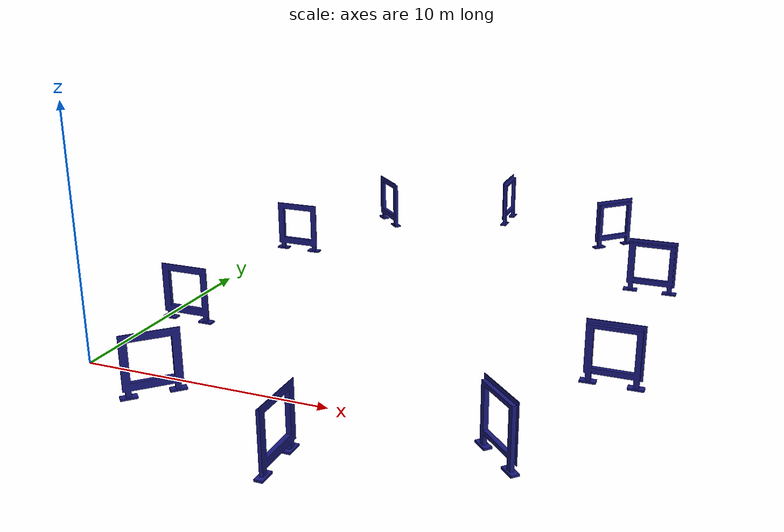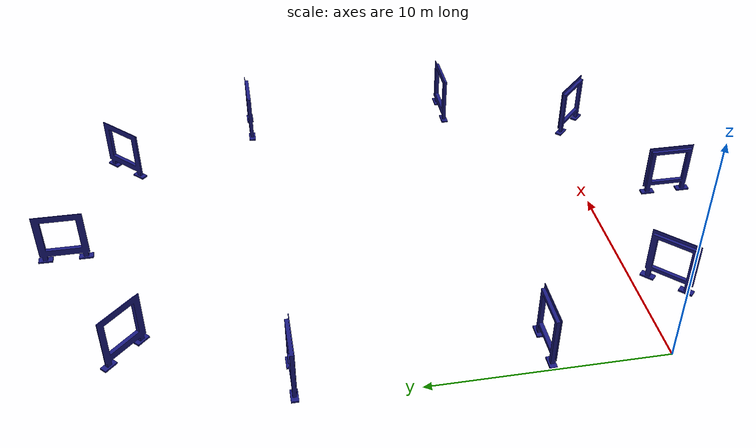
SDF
<sdf version="1.4">
 <world name="default">
  <include><uri>model://sun</uri></include>
  <include><uri>model://AlphaPilotGate</uri><pose>0 5 2.5 0 3.1415 3.1415</pose><name>Gate1</name></include>
  <include><uri>model://AlphaPilotGate</uri><pose>0 15 2.5 0 3.1415 3.1415</pose><name>Gate2</name></include>
  <include>
   <uri>model://AlphaPilotGate</uri>
   <pose>2.929 22.071 2.5 0 3.1415 2.3562</pose>
   <name>Gate3</name>
  </include>
  <include><uri>model://AlphaPilotGate</uri><pose>10 25 2.5 0 3.1415 1.5708</pose><name>Gate4</name></include>
  <include>
   <uri>model://AlphaPilotGate</uri>
   <pose>17.071 22.071 2.5 0 3.1415 0.7854</pose>
   <name>Gate5</name>
  </include>
  <include><uri>model://AlphaPilotGate</uri><pose>20 15 2.5 0 3.1415 0</pose><name>Gate6</name></include>
  <include><uri>model://AlphaPilotGate</uri><pose>20 5 2.5 0 3.1415 0</pose><name>Gate7</name></include>
  <include>
   <uri>model://AlphaPilotGate</uri>
   <pose>17.071 -2.071 2.5 0 3.1415 -0.7854</pose>
   <name>Gate8</name>
  </include>
  <include><uri>model://AlphaPilotGate</uri><pose>10 -5 2.5 0 3.1415 -1.5708</pose><name>Gate9</name></include>
  <include>
   <uri>model://AlphaPilotGate</uri>
   <pose>2.929 -2.071 2.5 0 3.1415 -2.3562</pose>
   <name>Gate10</name>
  </include>
  <plugin name="ros_interface_plugin" filename="librotors_gazebo_ros_interface_plugin.so"/>
  <spherical_coordinates>
   <surface_model>EARTH_WGS84</surface_model>
   <latitude_deg>47.3667</latitude_deg>
   <longitude_deg>8.5500</longitude_deg>
   <elevation>500.0</elevation>
   <heading_deg>0</heading_deg>
  </spherical_coordinates>
  <physics type="ode">
   <ode>
    <solver><type>quick</type><iters>1000</iters><sor>1.3</sor></solver>
    <constraints>
     <cfm>0</cfm>
     <erp>0.2</erp>
     <contact_max_correcting_vel>100</contact_max_correcting_vel>
     <contact_surface_layer>0.001</contact_surface_layer>
    </constraints>
   </ode>
   <max_step_size>0.01</max_step_size>
   <real_time_factor>1</real_time_factor>
   <real_time_update_rate>100</real_time_update_rate>
   <gravity>0 0 -9.8</gravity>
  </physics>
 </world>
</sdf>

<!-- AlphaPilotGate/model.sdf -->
<sdf version="1.5">
  <model name="AlphaPilotGate">
    <pose>0 0 0.75  0 3.1415 0</pose>
    <static>true</static>
    <link name="link">
      <inertial>
        <mass>40.0</mass>
        <inertia>
          <ixx>1</ixx>
          <ixy>0</ixy>
          <ixz>0</ixz>
          <iyy>1</iyy>
          <iyz>0</iyz>
          <izz>1</izz>
        </inertia>
      </inertial>

        <collision name = "collision">
     	  <origin rpy="0 0 0" xyz="0.15 0 0.35"/>
            <geometry>
              <mesh>
            	<uri>model://AlphaPilotGate/Meshes/AlphaPilotGate.STL</uri>
	    	<scale> 0.001 0.001 0.001 </scale>
              </mesh>
     	    </geometry>
   	</collision>

      <visual name="visual">
        <geometry>
          <mesh>
            <uri>model://AlphaPilotGate/Meshes/AlphaPilotGate.STL</uri>
	    <scale> 0.001 0.001 0.001 </scale>
          </mesh>
	</geometry>
	<material>
	  <ambient>0.1 0.1 0.5 1</ambient>
	  <diffuse>0.1 0.1 0.5 1</diffuse>
	  <specular>0 0 0 0</specular>
	  <emissive>0 0 0 1</emissive>
	</material>
      </visual>
    </link>
  </model>
</sdf>
